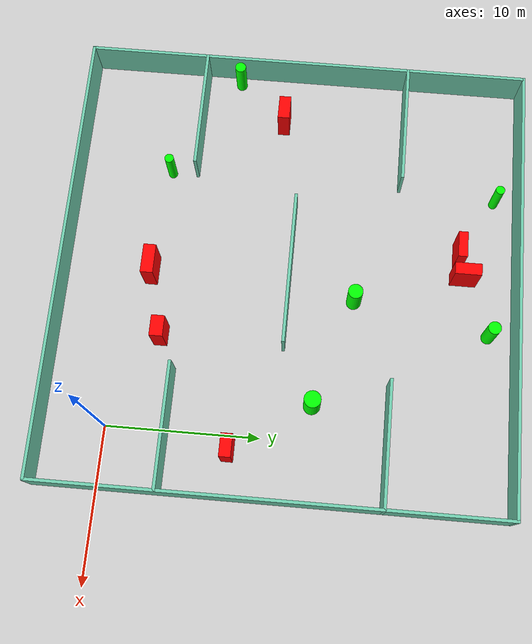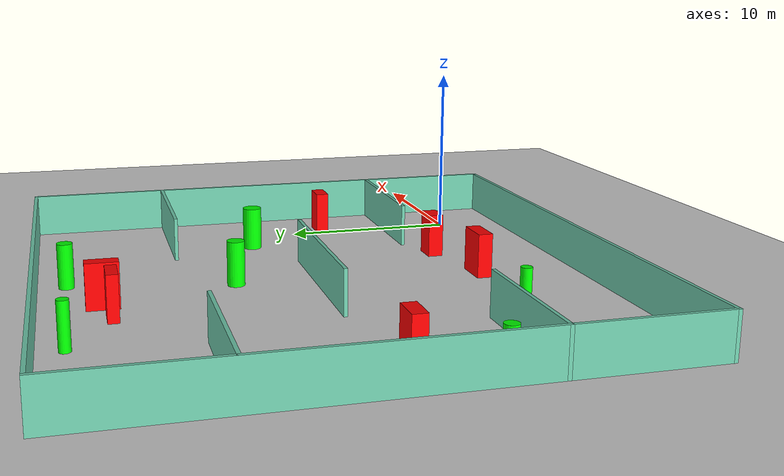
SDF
<sdf version="1.7">
 <world name="default">
  <light name="sun" type="directional">
   <pose>0 0 10 0 -0 0</pose>
   <diffuse>0.8 0.8 0.8 1</diffuse>
   <specular>0.2 0.2 0.2 1</specular>
   <attenuation>
    <range>1000</range>
    <constant>0.9</constant>
    <linear>0.01</linear>
    <quadratic>0.001</quadratic>
   </attenuation>
   <direction>-0.5 0.1 -0.9</direction>
   <spot><inner_angle>0</inner_angle><outer_angle>0</outer_angle><falloff>0</falloff></spot>
  </light>
  <model name="ground_plane">
   <static>1</static>
   <link name="link">
    <collision name="collision">
     <geometry><plane><normal>0 0 1</normal><size>100 100</size></plane></geometry>
     <surface>
      <contact><collide_bitmask>65535</collide_bitmask></contact>
      <friction><ode><mu>100</mu><mu2>50</mu2></ode></friction>
     </surface>
    </collision>
    <visual name="visual">
     <cast_shadows>0</cast_shadows>
     <geometry><plane><normal>0 0 1</normal><size>100 100</size></plane></geometry>
     <material>
      <script><uri>file://media/materials/scripts/gazebo.material</uri><name>Gazebo/Grey</name></script>
     </material>
    </visual>
   </link>
  </model>
  <gravity>0 0 -9.8</gravity>
  <magnetic_field>6e-06 2.3e-05 -4.2e-05</magnetic_field>
  <atmosphere type="adiabatic"/>
  <physics type="ode">
   <max_step_size>0.001</max_step_size>
   <real_time_factor>1</real_time_factor>
   <real_time_update_rate>1000</real_time_update_rate>
  </physics>
  <scene><ambient>0.4 0.4 0.4 1</ambient><background>0.7 0.7 0.7 1</background><shadows>1</shadows></scene>
  <spherical_coordinates>
   <surface_model>EARTH_WGS84</surface_model>
   <latitude_deg>0</latitude_deg>
   <longitude_deg>0</longitude_deg>
   <elevation>0</elevation>
   <heading_deg>0</heading_deg>
  </spherical_coordinates>
  <model name="my_base_walls">
   <link name="Wall_10">
    <collision name="Wall_10_Collision">
     <geometry><box><size>8.2 0.2 2.5</size></box></geometry>
     <pose>0 0 1.25 0 -0 0</pose>
    </collision>
    <visual name="Wall_10_Visual">
     <pose>0 0 1.25 0 -0 0</pose>
     <geometry><box><size>8.2 0.2 2.5</size></box></geometry>
     <material>
      <script><uri>file://media/materials/scripts/gazebo.material</uri><name>Gazebo/Grey</name></script>
      <ambient>0.435294 0.796078 0.67451 1</ambient>
     </material>
     <meta><layer>0</layer></meta>
    </visual>
    <pose>-11 -7 0 0 -0 0</pose>
   </link>
   <link name="Wall_12">
    <collision name="Wall_12_Collision">
     <geometry><box><size>8.2 0.2 2.5</size></box></geometry>
     <pose>0 0 1.25 0 -0 0</pose>
    </collision>
    <visual name="Wall_12_Visual">
     <pose>0 0 1.25 0 -0 0</pose>
     <geometry><box><size>8.2 0.2 2.5</size></box></geometry>
     <material>
      <script><uri>file://media/materials/scripts/gazebo.material</uri><name>Gazebo/Grey</name></script>
      <ambient>0.435294 0.796078 0.67451 1</ambient>
     </material>
     <meta><layer>0</layer></meta>
    </visual>
    <pose>-11 7 0 0 -0 0</pose>
   </link>
   <link name="Wall_14">
    <collision name="Wall_14_Collision">
     <geometry><box><size>8.2 0.2 2.5</size></box></geometry>
     <pose>0 0 1.25 0 -0 0</pose>
    </collision>
    <visual name="Wall_14_Visual">
     <pose>0 0 1.25 0 -0 0</pose>
     <geometry><box><size>8.2 0.2 2.5</size></box></geometry>
     <material>
      <script><uri>file://media/materials/scripts/gazebo.material</uri><name>Gazebo/Grey</name></script>
      <ambient>0.435294 0.796078 0.67451 1</ambient>
     </material>
     <meta><layer>0</layer></meta>
    </visual>
    <pose>11 7 0 0 -0 3.14159</pose>
   </link>
   <link name="Wall_16">
    <collision name="Wall_16_Collision">
     <geometry><box><size>10.2 0.2 2.5</size></box></geometry>
     <pose>0 0 1.25 0 -0 0</pose>
    </collision>
    <visual name="Wall_16_Visual">
     <pose>0 0 1.25 0 -0 0</pose>
     <geometry><box><size>10.2 0.2 2.5</size></box></geometry>
     <material>
      <script><uri>file://media/materials/scripts/gazebo.material</uri><name>Gazebo/Grey</name></script>
      <ambient>0.435294 0.796078 0.67451 1</ambient>
     </material>
     <meta><layer>0</layer></meta>
    </visual>
    <pose>0 0 0 0 -0 3.14159</pose>
   </link>
   <link name="Wall_2">
    <collision name="Wall_2_Collision">
     <geometry><box><size>30.2 0.2 2.5</size></box></geometry>
     <pose>0 0 1.25 0 -0 0</pose>
    </collision>
    <visual name="Wall_2_Visual">
     <pose>0 0 1.25 0 -0 0</pose>
     <geometry><box><size>30.2 0.2 2.5</size></box></geometry>
     <material>
      <script><uri>file://media/materials/scripts/gazebo.material</uri><name>Gazebo/Grey</name></script>
      <ambient>0.435294 0.796078 0.67451 1</ambient>
     </material>
     <meta><layer>0</layer></meta>
    </visual>
    <pose>0 -15 0 0 -0 3.14159</pose>
   </link>
   <link name="Wall_3">
    <collision name="Wall_3_Collision">
     <geometry><box><size>30.2 0.2 2.5</size></box></geometry>
     <pose>0 0 1.25 0 -0 0</pose>
    </collision>
    <visual name="Wall_3_Visual">
     <pose>0 0 1.25 0 -0 0</pose>
     <geometry><box><size>30.2 0.2 2.5</size></box></geometry>
     <material>
      <script><uri>file://media/materials/scripts/gazebo.material</uri><name>Gazebo/Grey</name></script>
      <ambient>0.435294 0.796078 0.67451 1</ambient>
     </material>
     <meta><layer>0</layer></meta>
    </visual>
    <pose>-15 0 0 0 -0 1.5708</pose>
   </link>
   <link name="Wall_4">
    <collision name="Wall_4_Collision">
     <geometry><box><size>30.2 0.2 2.5</size></box></geometry>
     <pose>0 0 1.25 0 -0 0</pose>
    </collision>
    <visual name="Wall_4_Visual">
     <pose>0 0 1.25 0 -0 0</pose>
     <geometry><box><size>30.2 0.2 2.5</size></box></geometry>
     <material>
      <script><uri>file://media/materials/scripts/gazebo.material</uri><name>Gazebo/Grey</name></script>
      <ambient>0.435294 0.796078 0.67451 1</ambient>
     </material>
     <meta><layer>0</layer></meta>
    </visual>
    <pose>0 15 0 0 -0 0</pose>
   </link>
   <link name="Wall_6">
    <collision name="Wall_6_Collision">
     <geometry><box><size>30.2 0.2 2.5</size></box></geometry>
     <pose>0 0 1.25 0 -0 0</pose>
    </collision>
    <visual name="Wall_6_Visual">
     <pose>0 0 1.25 0 -0 0</pose>
     <geometry><box><size>30.2 0.2 2.5</size></box></geometry>
     <material>
      <script><uri>file://media/materials/scripts/gazebo.material</uri><name>Gazebo/Grey</name></script>
      <ambient>0.435294 0.796078 0.67451 1</ambient>
     </material>
     <meta><layer>0</layer></meta>
    </visual>
    <pose>15 0 0 0 -0 1.5708</pose>
   </link>
   <link name="Wall_8">
    <collision name="Wall_8_Collision">
     <geometry><box><size>8.2 0.2 2.5</size></box></geometry>
     <pose>0 0 1.25 0 -0 0</pose>
    </collision>
    <visual name="Wall_8_Visual">
     <pose>0 0 1.25 0 -0 0</pose>
     <geometry><box><size>8.2 0.2 2.5</size></box></geometry>
     <material>
      <script><uri>file://media/materials/scripts/gazebo.material</uri><name>Gazebo/Grey</name></script>
      <ambient>0.435294 0.796078 0.67451 1</ambient>
     </material>
     <meta><layer>0</layer></meta>
    </visual>
    <pose>11 -7 0 0 -0 3.14159</pose>
   </link>
   <static>1</static>
   <pose>-11 11 0 0 -0 0</pose>
  </model>
  <model name="cylinder1">
   <static>1</static>
   <link name="link">
    <inertial>
     <mass>1</mass>
     <inertia><ixx>0.5</ixx><ixy>0</ixy><ixz>0</ixz><iyy>0.5</iyy><iyz>0</iyz><izz>1</izz></inertia>
    </inertial>
    <collision name="collision">
     <geometry><cylinder><radius>0.30225335666679753</radius><length>2.5</length></cylinder></geometry>
    </collision>
    <visual name="visual">
     <geometry><cylinder><radius>0.30225335666679753</radius><length>2.5</length></cylinder></geometry>
     <material>
      <ambient>0 1 0 1</ambient>
      <diffuse>0 1 0 1</diffuse>
      <specular>0.1 0.1 0.1 1</specular>
      <emissive>0 0 0 0</emissive>
     </material>
    </visual>
   </link>
   <pose>-17.963802480641643 2.254109374604921 1.25 0 0 0</pose>
  </model>
  <model name="cylinder2">
   <static>1</static>
   <link name="link">
    <inertial>
     <mass>1</mass>
     <inertia><ixx>0.5</ixx><ixy>0</ixy><ixz>0</ixz><iyy>0.5</iyy><iyz>0</iyz><izz>1</izz></inertia>
    </inertial>
    <collision name="collision">
     <geometry><cylinder><radius>0.4863180901912106</radius><length>2.5</length></cylinder></geometry>
    </collision>
    <visual name="visual">
     <geometry><cylinder><radius>0.4863180901912106</radius><length>2.5</length></cylinder></geometry>
     <material>
      <ambient>0 1 0 1</ambient>
      <diffuse>0 1 0 1</diffuse>
      <specular>0.1 0.1 0.1 1</specular>
      <emissive>0 0 0 0</emissive>
     </material>
    </visual>
   </link>
   <pose>-9.619904589797184 15.386105169670955 1.25 0 0 0</pose>
  </model>
  <model name="cylinder3">
   <static>1</static>
   <link name="link">
    <inertial>
     <mass>1</mass>
     <inertia><ixx>0.5</ixx><ixy>0</ixy><ixz>0</ixz><iyy>0.5</iyy><iyz>0</iyz><izz>1</izz></inertia>
    </inertial>
    <collision name="collision">
     <geometry><cylinder><radius>0.550681832861649</radius><length>2.5</length></cylinder></geometry>
    </collision>
    <visual name="visual">
     <geometry><cylinder><radius>0.550681832861649</radius><length>2.5</length></cylinder></geometry>
     <material>
      <ambient>0 1 0 1</ambient>
      <diffuse>0 1 0 1</diffuse>
      <specular>0.1 0.1 0.1 1</specular>
      <emissive>0 0 0 0</emissive>
     </material>
    </visual>
   </link>
   <pose>-2.364938195119837 13.157931148701813 1.25 0 0 0</pose>
  </model>
  <model name="cylinder4">
   <static>1</static>
   <link name="link">
    <inertial>
     <mass>1</mass>
     <inertia><ixx>0.5</ixx><ixy>0</ixy><ixz>0</ixz><iyy>0.5</iyy><iyz>0</iyz><izz>1</izz></inertia>
    </inertial>
    <collision name="collision">
     <geometry><cylinder><radius>0.3005439532161349</radius><length>2.5</length></cylinder></geometry>
    </collision>
    <visual name="visual">
     <geometry><cylinder><radius>0.3005439532161349</radius><length>2.5</length></cylinder></geometry>
     <material>
      <ambient>0 1 0 1</ambient>
      <diffuse>0 1 0 1</diffuse>
      <specular>0.1 0.1 0.1 1</specular>
      <emissive>0 0 0 0</emissive>
     </material>
    </visual>
   </link>
   <pose>-17.506570486827407 24.539845512987334 1.25 0 0 0</pose>
  </model>
  <model name="cylinder5">
   <static>1</static>
   <link name="link">
    <inertial>
     <mass>1</mass>
     <inertia><ixx>0.5</ixx><ixy>0</ixy><ixz>0</ixz><iyy>0.5</iyy><iyz>0</iyz><izz>1</izz></inertia>
    </inertial>
    <collision name="collision">
     <geometry><cylinder><radius>0.3673357372865859</radius><length>2.5</length></cylinder></geometry>
    </collision>
    <visual name="visual">
     <geometry><cylinder><radius>0.3673357372865859</radius><length>2.5</length></cylinder></geometry>
     <material>
      <ambient>0 1 0 1</ambient>
      <diffuse>0 1 0 1</diffuse>
      <specular>0.1 0.1 0.1 1</specular>
      <emissive>0 0 0 0</emissive>
     </material>
    </visual>
   </link>
   <pose>-25.294889296724012 6.361756844789088 1.25 0 0 0</pose>
  </model>
  <model name="cylinder6">
   <static>1</static>
   <link name="link">
    <inertial>
     <mass>1</mass>
     <inertia><ixx>0.5</ixx><ixy>0</ixy><ixz>0</ixz><iyy>0.5</iyy><iyz>0</iyz><izz>1</izz></inertia>
    </inertial>
    <collision name="collision">
     <geometry><cylinder><radius>0.4249574362510511</radius><length>2.5</length></cylinder></geometry>
    </collision>
    <visual name="visual">
     <geometry><cylinder><radius>0.4249574362510511</radius><length>2.5</length></cylinder></geometry>
     <material>
      <ambient>0 1 0 1</ambient>
      <diffuse>0 1 0 1</diffuse>
      <specular>0.1 0.1 0.1 1</specular>
      <emissive>0 0 0 0</emissive>
     </material>
    </visual>
   </link>
   <pose>-7.923871495526033 24.366102264624352 1.25 0 0 0</pose>
  </model>
  <model name="box1">
   <static>1</static>
   <link name="link">
    <inertial>
     <mass>1</mass>
     <inertia><ixx>0.083</ixx><ixy>0</ixy><ixz>0</ixz><iyy>0.083</iyy><iyz>0</iyz><izz>0.083</izz></inertia>
    </inertial>
    <collision name="collision">
     <geometry><box><size>1.4718636701326986 0.7481577328064523 2.5</size></box></geometry>
    </collision>
    <visual name="visual">
     <geometry><box><size>1.4718636701326986 0.7481577328064523 2.5</size></box></geometry>
     <material>
      <ambient>1 0 0 1</ambient>
      <diffuse>1 0 0 1</diffuse>
      <specular>0.1 0.1 0.1 1</specular>
      <emissive>0 0 0 0</emissive>
     </material>
    </visual>
    <sensor name="my_contact" type="contact">
     <contact><collision>box_collision</collision><topic>__default_topic__</topic></contact>
    </sensor>
   </link>
   <pose>0.9181823522126713 8.0616472912626 1.25 0 0 0</pose>
  </model>
  <model name="box2">
   <static>1</static>
   <link name="link">
    <inertial>
     <mass>1</mass>
     <inertia><ixx>0.083</ixx><ixy>0</ixy><ixz>0</ixz><iyy>0.083</iyy><iyz>0</iyz><izz>0.083</izz></inertia>
    </inertial>
    <collision name="collision">
     <geometry><box><size>1.7225770291115567 0.6090195490368416 2.5</size></box></geometry>
    </collision>
    <visual name="visual">
     <geometry><box><size>1.7225770291115567 0.6090195490368416 2.5</size></box></geometry>
     <material>
      <ambient>1 0 0 1</ambient>
      <diffuse>1 0 0 1</diffuse>
      <specular>0.1 0.1 0.1 1</specular>
      <emissive>0 0 0 0</emissive>
     </material>
    </visual>
    <sensor name="my_contact" type="contact">
     <contact><collision>box_collision</collision><topic>__default_topic__</topic></contact>
    </sensor>
   </link>
   <pose>-13.468043866571637 22.198845182306517 1.25 0 0 0</pose>
  </model>
  <model name="box3">
   <static>1</static>
   <link name="link">
    <inertial>
     <mass>1</mass>
     <inertia><ixx>0.083</ixx><ixy>0</ixy><ixz>0</ixz><iyy>0.083</iyy><iyz>0</iyz><izz>0.083</izz></inertia>
    </inertial>
    <collision name="collision">
     <geometry><box><size>0.7808748906807642 1.7432225288314633 2.5</size></box></geometry>
    </collision>
    <visual name="visual">
     <geometry><box><size>0.7808748906807642 1.7432225288314633 2.5</size></box></geometry>
     <material>
      <ambient>1 0 0 1</ambient>
      <diffuse>1 0 0 1</diffuse>
      <specular>0.1 0.1 0.1 1</specular>
      <emissive>0 0 0 0</emissive>
     </material>
    </visual>
    <sensor name="my_contact" type="contact">
     <contact><collision>box_collision</collision><topic>__default_topic__</topic></contact>
    </sensor>
   </link>
   <pose>-11.78111467871462 22.598115738727678 1.25 0 0 0</pose>
  </model>
  <model name="box4">
   <static>1</static>
   <link name="link">
    <inertial>
     <mass>1</mass>
     <inertia><ixx>0.083</ixx><ixy>0</ixy><ixz>0</ixz><iyy>0.083</iyy><iyz>0</iyz><izz>0.083</izz></inertia>
    </inertial>
    <collision name="collision">
     <geometry><box><size>1.3598386416047887 0.8668688955103072 2.5</size></box></geometry>
    </collision>
    <visual name="visual">
     <geometry><box><size>1.3598386416047887 0.8668688955103072 2.5</size></box></geometry>
     <material>
      <ambient>1 0 0 1</ambient>
      <diffuse>1 0 0 1</diffuse>
      <specular>0.1 0.1 0.1 1</specular>
      <emissive>0 0 0 0</emissive>
     </material>
    </visual>
    <sensor name="my_contact" type="contact">
     <contact><collision>box_collision</collision><topic>__default_topic__</topic></contact>
    </sensor>
   </link>
   <pose>-6.278772447130256 2.901219893225395 1.25 0 0 0</pose>
  </model>
  <model name="box5">
   <static>1</static>
   <link name="link">
    <inertial>
     <mass>1</mass>
     <inertia><ixx>0.083</ixx><ixy>0</ixy><ixz>0</ixz><iyy>0.083</iyy><iyz>0</iyz><izz>0.083</izz></inertia>
    </inertial>
    <collision name="collision">
     <geometry><box><size>1.62204763062663 0.7963187137406291 2.5</size></box></geometry>
    </collision>
    <visual name="visual">
     <geometry><box><size>1.62204763062663 0.7963187137406291 2.5</size></box></geometry>
     <material>
      <ambient>1 0 0 1</ambient>
      <diffuse>1 0 0 1</diffuse>
      <specular>0.1 0.1 0.1 1</specular>
      <emissive>0 0 0 0</emissive>
     </material>
    </visual>
    <sensor name="my_contact" type="contact">
     <contact><collision>box_collision</collision><topic>__default_topic__</topic></contact>
    </sensor>
   </link>
   <pose>-22.46610348659628 9.671694629665907 1.25 0 0 0</pose>
  </model>
  <model name="box6">
   <static>1</static>
   <link name="link">
    <inertial>
     <mass>1</mass>
     <inertia><ixx>0.083</ixx><ixy>0</ixy><ixz>0</ixz><iyy>0.083</iyy><iyz>0</iyz><izz>0.083</izz></inertia>
    </inertial>
    <collision name="collision">
     <geometry><box><size>1.9319156331198348 0.8224181040769458 2.5</size></box></geometry>
    </collision>
    <visual name="visual">
     <geometry><box><size>1.9319156331198348 0.8224181040769458 2.5</size></box></geometry>
     <material>
      <ambient>1 0 0 1</ambient>
      <diffuse>1 0 0 1</diffuse>
      <specular>0.1 0.1 0.1 1</specular>
      <emissive>0 0 0 0</emissive>
     </material>
    </visual>
    <sensor name="my_contact" type="contact">
     <contact><collision>box_collision</collision><topic>__default_topic__</topic></contact>
    </sensor>
   </link>
   <pose>-10.748014633778524 1.7612845926325988 1.25 0 0 0</pose>
  </model>
 </world>
</sdf>
